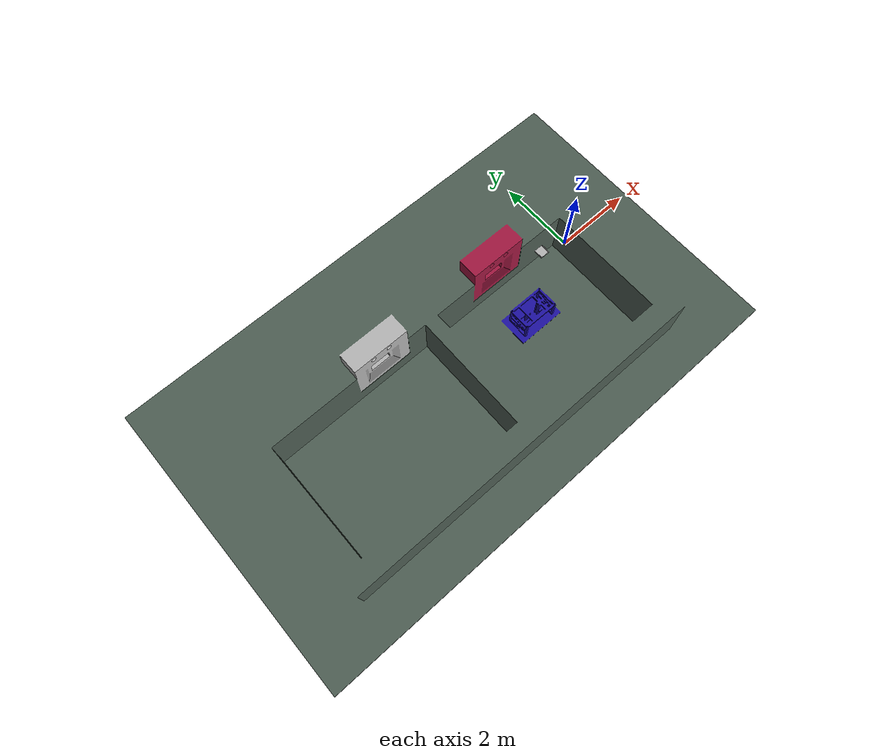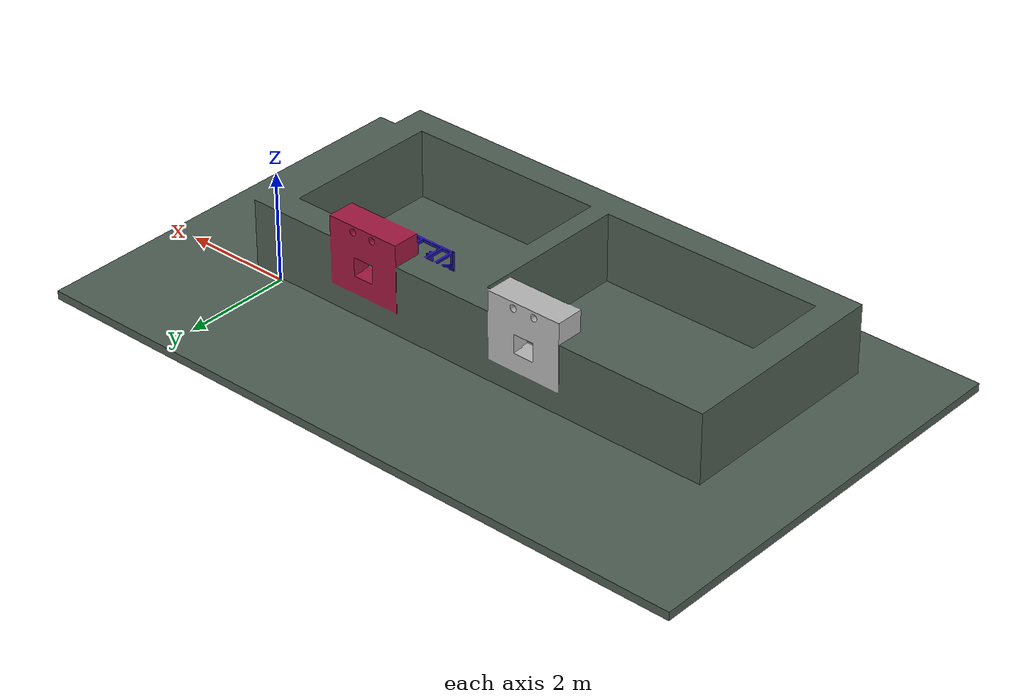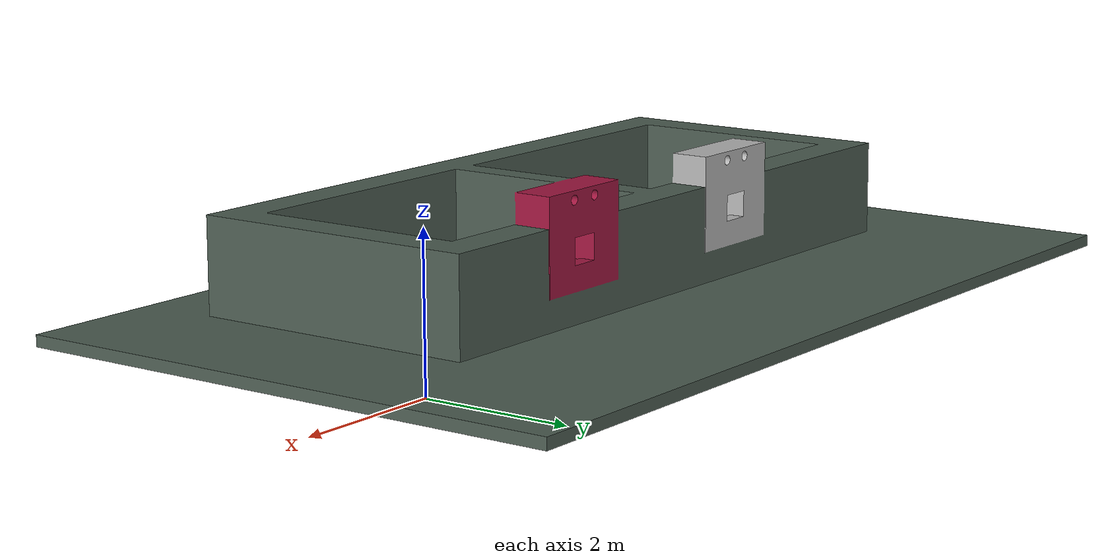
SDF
<?xml version="1.0" ?>
<sdf version="1.4">
  <model name="Hotcell">
    <static>true</static>
    <link name="link">
        <!--> Not necessary to declare inertia as the body is static<-->
      <collision name="collision">
        <geometry>
          <mesh>
            <uri>model://Hotcell/meshes/Hotcell.dae </uri>
            <scale>5.0 5.0 5.0</scale>
          </mesh>
        </geometry>
      </collision>
      <visual name="visual">
        <geometry>
          <mesh>
            <uri>model://Hotcell/meshes/Hotcell.dae </uri>
            <scale>5.0 5.0 5.0</scale>
          </mesh>
        </geometry>
      </visual>
    </link>
  </model>
</sdf>
